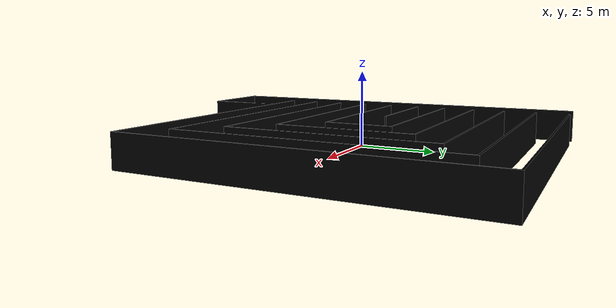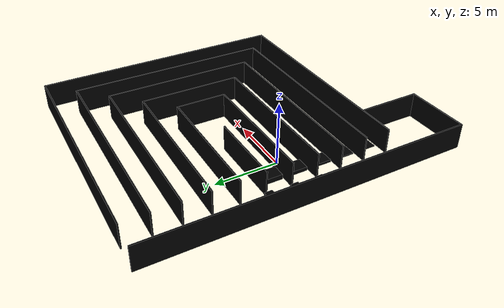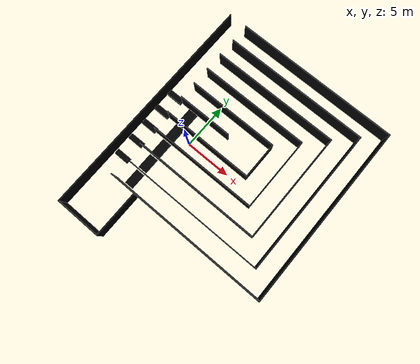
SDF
<?xml version="1.0" ?>
<sdf version="1.5">
  <model name="Maze">
    <pose>0 0 0.5 0 0 0</pose>
    <static>true</static>
    <link name="link">
      <collision name="collision">
        <geometry>
          <mesh>
            <uri>model://Maze/meshes/Maze.stl</uri>
            <scale>1 1 1</scale>
          </mesh>
        </geometry>
      </collision>

      <visual name="visual">
        <geometry>
          <mesh>
            <uri>model://Maze/meshes/Maze.dae</uri>
            <scale>1 1 1</scale>
          </mesh>
        </geometry>
      </visual>
    </link>
  </model>
</sdf>
